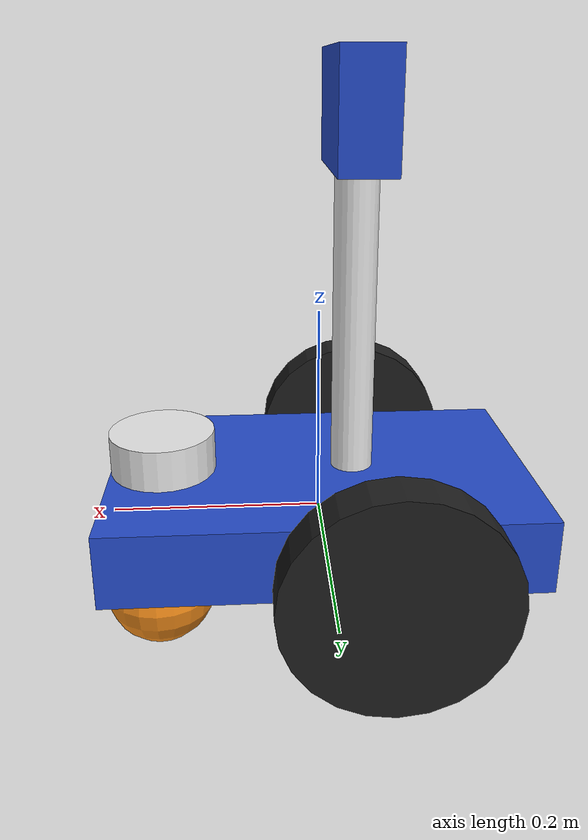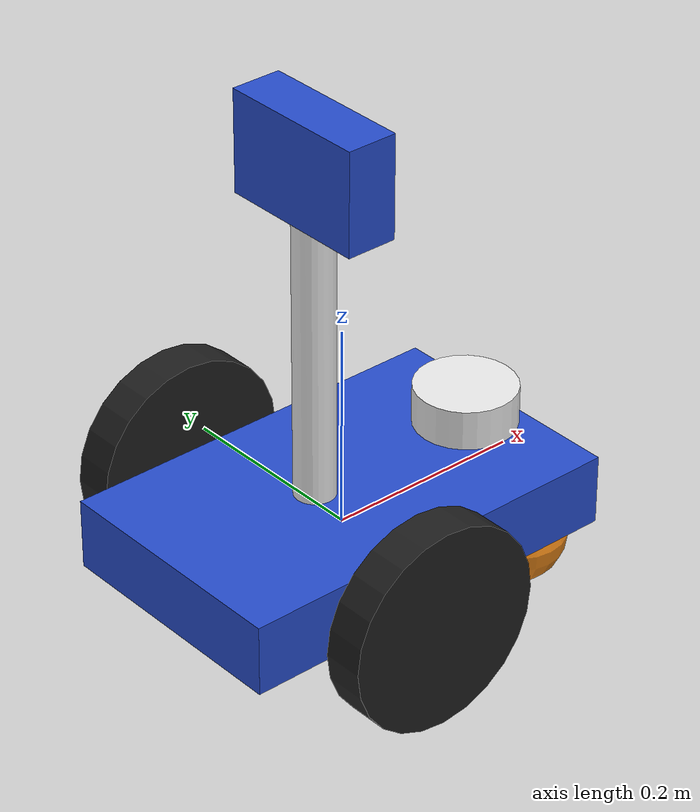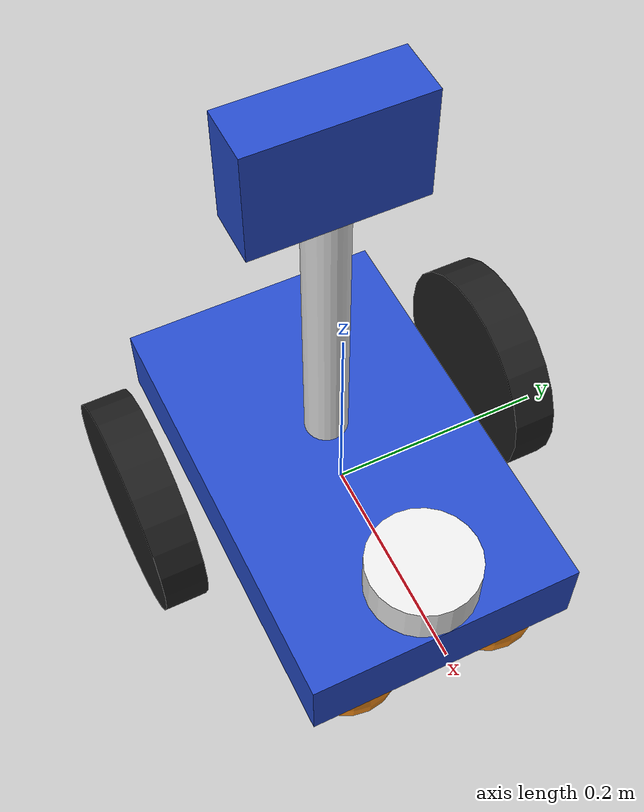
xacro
<?xml version="1.0" ?>
<robot name="m2wr" xmlns:xacro="http://www.ros.org/wiki/xacro">

  <xacro:include filename="$(find amr_description)/urdf/materials.xacro" />
  <xacro:include filename="$(find amr_description)/urdf/amr.gazebo" />
  <xacro:include filename="$(find amr_description)/urdf/macros.xacro" />

  <link name="base_footprint"/>

  <joint name="base_joint" type="fixed">
    <parent link="base_footprint"/>
    <child link="base_link"/>
    <origin xyz="0.0 0.0 0.010" rpy="0 0 0"/>
  </joint>

  <link name="base_link">
    <!-- pose and inertial -->
    <pose>0 0 0.1 0 0 0</pose>
    <inertial>
      <mass value="5"/>
      <origin rpy="0 0 0" xyz="0 0 0.1"/>
      <inertia ixx="0.0395416666667" ixy="0" ixz="0" iyy="0.106208333333" iyz="0" izz="0.106208333333"/>
    </inertial>
    <!-- body -->
    <collision name="collision_chassis">
      <geometry>
        <box size="0.4 0.25 0.07"/>
      </geometry>
    </collision>
    <visual>
      <origin rpy="0 0 0" xyz="0 0 0"/>
      <geometry>
        <box size="0.4 0.25 0.07"/>
      </geometry>
      <material name="blue"/>
    </visual>
    <!-- caster front -->
    <collision name="caster_left_collision">
      <origin rpy=" 0 0 0" xyz="0.3 0.14 -0.025"/>
      <geometry>
        <sphere radius="0.05"/>
      </geometry>
      <surface>
        <friction>
          <ode>
            <mu>0</mu>
            <mu2>0</mu2>
            <slip1>1.0</slip1>
            <slip2>1.0</slip2>
          </ode>
        </friction>
      </surface>
    </collision>
    <visual name="caster_left_visual">
      <origin rpy=" 0 0 0" xyz="0.15 0.07 -0.05"/>
      <geometry>
        <sphere radius="0.05"/>
      </geometry>
    </visual>

    <collision name="caster_right_collision">
      <origin rpy=" 0 0 0" xyz="0.3 0.14 -0.05"/>
      <geometry>
        <sphere radius="0.05"/>
      </geometry>
      <surface>
        <friction>
          <ode>
            <mu>0</mu>
            <mu2>0</mu2>
            <slip1>1.0</slip1>
            <slip2>1.0</slip2>
          </ode>
        </friction>
      </surface>
    </collision>
    <visual name="caster_right_visual">
      <origin rpy=" 0 0 0" xyz="0.15 -0.07 -0.05"/>
      <geometry>
        <sphere radius="0.05"/>
      </geometry>
    </visual>

  </link>

  <joint name="imu_joint" type="fixed">
    <parent link="base_link"/>
    <child link="imu_link"/>
    <origin xyz="-0.032 0 0.068" rpy="0 0 0"/>
  </joint>

  <link name="imu_link"/>

  <joint name="camera_joint" type="fixed">
    <parent link="base_link"/>
    <child link="camera_link"/>
    <origin xyz="-0.032 0 0.268" rpy="0 0 0"/>
  </joint>

  <link name="camera_link">
    <inertial>
      <origin xyz="0 0 -0.1" rpy="0 0 0" />
      <mass value="1" />
      <xacro:cylinder_inertia mass="1" r="0.02" l="0.3" />
    </inertial>

    <visual>
      <origin xyz="0 0 -0.1" rpy="0 0 0" />
      <geometry>
        <cylinder radius="0.02" length="0.3"/>
      </geometry>
      <material name="white" />
    </visual>

    <collision>
      <origin xyz="0 0 -0.1" rpy="0 0 0"/>
      <geometry>
        <cylinder radius="0.02" length="0.3"/>
      </geometry>
    </collision>

    <collision name="tablet_mount">
      <geometry>
        <box size="0.1 0.1 0.1"/>
      </geometry>
    </collision>
    <visual>
      <origin rpy="0 0 0" xyz="0 0 0.1"/>
      <geometry>
        <box size="0.05 0.15 0.1"/>
      </geometry>
      <material name="blue"/>
    </visual>

   </link>

  <link name="base_scan">
    <inertial>
      <origin xyz="0 0 -0.1" rpy="0 0 0" />
      <mass value="1" />
      <xacro:cylinder_inertia mass="1" r="0.05" l="0.05" />
    </inertial>

    <visual>
      <origin xyz="0 0 -0.1" rpy="0 0 0" />
      <geometry>
        <cylinder radius="0.05" length="0.05"/>
      </geometry>
      <material name="white" />
    </visual>

    <collision>
      <origin xyz="0 0 -0.1" rpy="0 0 0"/>
      <geometry>
        <cylinder radius="0.05" length="0.05"/>
      </geometry>
    </collision>
  </link>

  <joint name="joint_sensor_laser" type="fixed">
    <origin xyz="0.15 0 0.15" rpy="0 0 0"/>
    <parent link="base_link"/>
    <child link="base_scan"/>
  </joint>

  <xacro:link_wheel name="wheel_right_link" />
  <xacro:joint_wheel name="joint_right_wheel" child="wheel_right_link" origin_xyz="-0.05 -0.175 0" />

  <xacro:link_wheel name="wheel_left_link" />
  <xacro:joint_wheel name="joint_left_wheel" child="wheel_left_link" origin_xyz="-0.05 0.175 0" />
</robot>

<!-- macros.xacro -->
<robot xmlns:xacro="http://www.ros.org/wiki/xacro">
    <xacro:macro name="link_wheel" params="name">
        <link name="${name}">
            <inertial>
              <mass value="0.2"/>
              <origin rpy="0 1.5707 1.5707" xyz="0 0 0"/>
              <inertia ixx="0.000526666666667" ixy="0" ixz="0" iyy="0.000526666666667" iyz="0" izz="0.001"/>
            </inertial>
            <collision name="link_right_wheel_collision">
              <origin rpy="0 1.5707 1.5707" xyz="0 0 0"/>
              <geometry>
                <cylinder length="0.04" radius="0.1"/>
              </geometry>
            </collision>
            <visual name="${name}_visual">
              <origin rpy="0 1.5707 1.5707" xyz="0 0 0"/>
              <geometry>
                <cylinder length="0.04" radius="0.1"/>
              </geometry>
            </visual>
        </link>
    </xacro:macro>

    <xacro:macro name="joint_wheel" params="name child origin_xyz">
      <joint name="${name}" type="continuous">
        <origin rpy="0 0 0" xyz="${origin_xyz}"/>
        <child link="${child}"/>
        <parent link="base_link"/>
        <axis rpy="0 0 0" xyz="0 1 0"/>
        <limit effort="10000" velocity="1000"/>
        <joint_properties damping="1.0" friction="1.0"/>
      </joint>
    </xacro:macro>

    <xacro:macro name="cylinder_inertia" params="mass r l">
      <inertia  ixx="${mass*(3*r*r+l*l)/12}" ixy = "0" ixz = "0"
                iyy="${mass*(3*r*r+l*l)/12}" iyz = "0"
                izz="${mass*(r*r)/2}" />
    </xacro:macro>
</robot>
